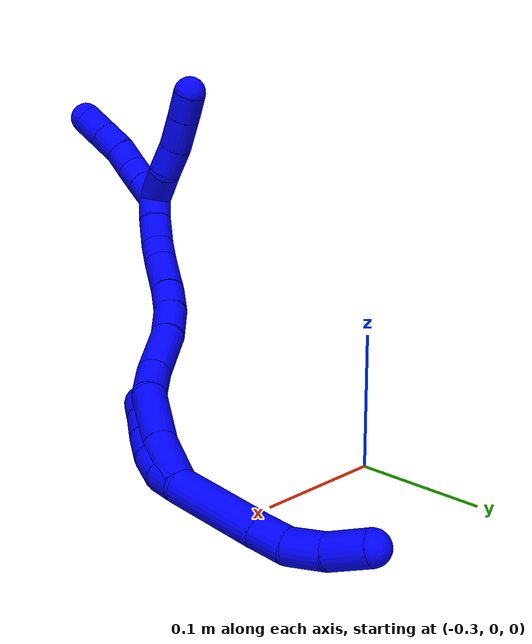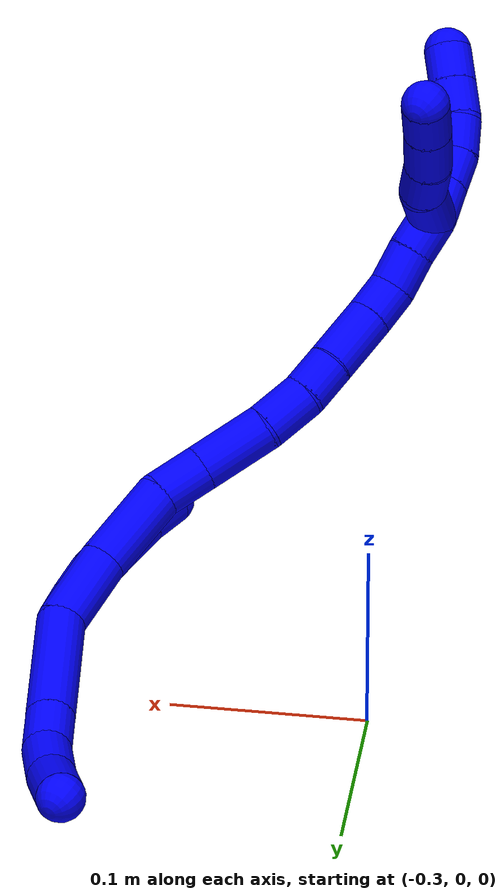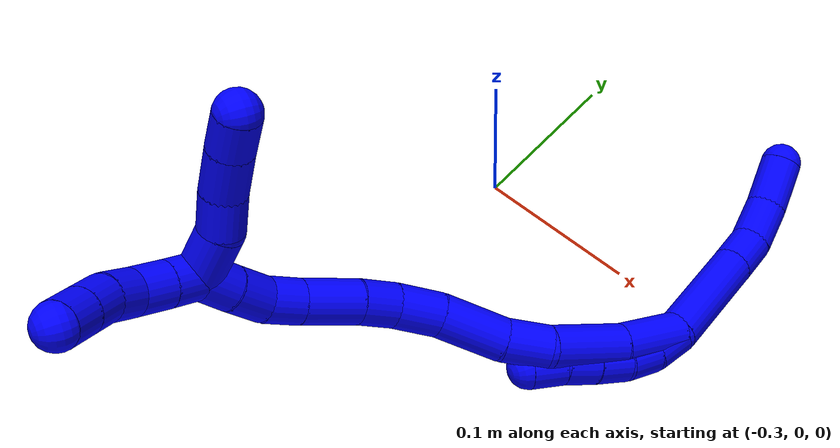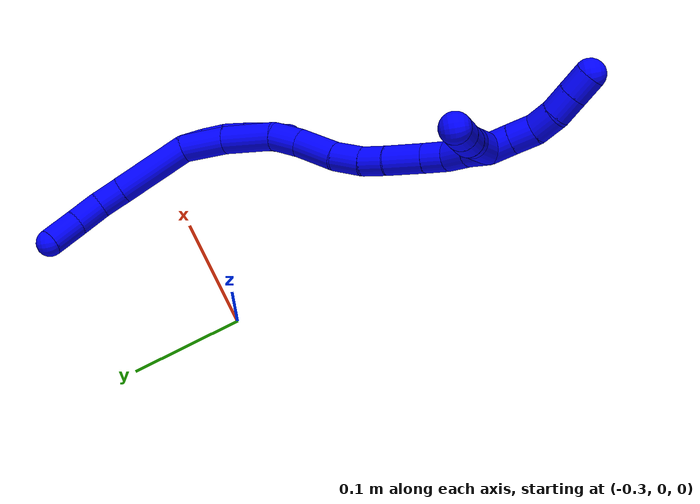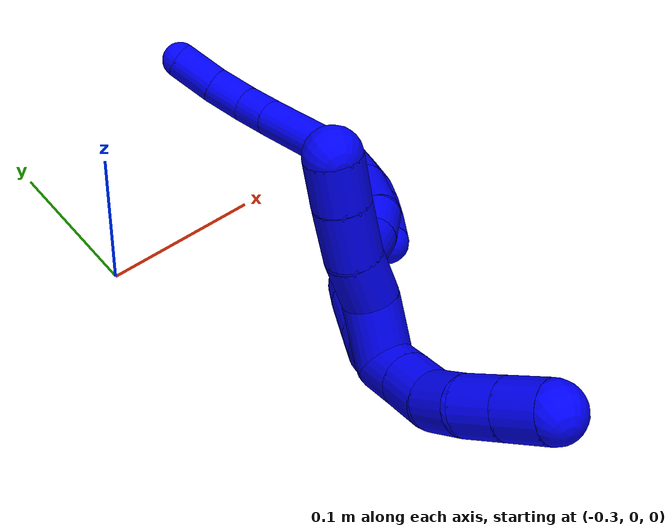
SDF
<sdf version="1.7">
 <world name="default">
  <model name="1">
   <static>0</static>
   <link name="1">
    <collision name="collision-cylinder-e_1_2_8">
     <pose>0.01453 -0.000638 -0.030643 3.12078 0.442671 3.04915</pose>
     <geometry><cylinder><radius>0.0125</radius><length>0.067839</length></cylinder></geometry>
     <surface>
      <friction><ode><mu>1.16</mu><mu2>1.16</mu2><slip1>0</slip1><slip2>0</slip2></ode></friction>
      <contact><ode><kp>1e+06</kp><kd>1</kd><max_vel>0</max_vel><min_depth>0.001</min_depth></ode></contact>
     </surface>
    </collision>
    <visual name="visual-cylinder-e_1_2_8">
     <pose>0.01453 -0.000638 -0.030643 3.12078 0.442671 3.04915</pose>
     <geometry><cylinder><radius>0.0125</radius><length>0.067839</length></cylinder></geometry>
     <material><ambient>0 0 1 1</ambient></material>
    </visual>
    <collision name="collision-cylinder-e_2_8_9">
     <pose>0.034278 -0.001905 -0.072082 3.08335 0.44965 2.8882</pose>
     <geometry><cylinder><radius>0.0125</radius><length>0.024014</length></cylinder></geometry>
     <surface>
      <friction><ode><mu>1.16</mu><mu2>1.16</mu2><slip1>0</slip1><slip2>0</slip2></ode></friction>
      <contact><ode><kp>1e+06</kp><kd>1</kd><max_vel>0</max_vel><min_depth>0.001</min_depth></ode></contact>
     </surface>
    </collision>
    <visual name="visual-cylinder-e_2_8_9">
     <pose>0.034278 -0.001905 -0.072082 3.08335 0.44965 2.8882</pose>
     <geometry><cylinder><radius>0.0125</radius><length>0.024014</length></cylinder></geometry>
     <material><ambient>0 0 1 1</ambient></material>
    </visual>
    <collision name="collision-cylinder-e_3_9_10">
     <pose>0.047265 -0.006548 -0.093408 2.77749 0.603508 2.07339</pose>
     <geometry><cylinder><radius>0.0125</radius><length>0.027376</length></cylinder></geometry>
     <surface>
      <friction><ode><mu>1.16</mu><mu2>1.16</mu2><slip1>0</slip1><slip2>0</slip2></ode></friction>
      <contact><ode><kp>1e+06</kp><kd>1</kd><max_vel>0</max_vel><min_depth>0.001</min_depth></ode></contact>
     </surface>
    </collision>
    <visual name="visual-cylinder-e_3_9_10">
     <pose>0.047265 -0.006548 -0.093408 2.77749 0.603508 2.07339</pose>
     <geometry><cylinder><radius>0.0125</radius><length>0.027376</length></cylinder></geometry>
     <material><ambient>0 0 1 1</ambient></material>
    </visual>
    <collision name="collision-cylinder-e_4_10_6">
     <pose>0.064042 -0.017705 -0.114163 2.53174 0.625537 1.59787</pose>
     <geometry><cylinder><radius>0.0125</radius><length>0.030771</length></cylinder></geometry>
     <surface>
      <friction><ode><mu>1.16</mu><mu2>1.16</mu2><slip1>0</slip1><slip2>0</slip2></ode></friction>
      <contact><ode><kp>1e+06</kp><kd>1</kd><max_vel>0</max_vel><min_depth>0.001</min_depth></ode></contact>
     </surface>
    </collision>
    <visual name="visual-cylinder-e_4_10_6">
     <pose>0.064042 -0.017705 -0.114163 2.53174 0.625537 1.59787</pose>
     <geometry><cylinder><radius>0.0125</radius><length>0.030771</length></cylinder></geometry>
     <material><ambient>0 0 1 1</ambient></material>
    </visual>
    <collision name="collision-cylinder-e_1_2_11">
     <pose>-0.001826 0.001794 0.009667 -0.183493 -0.183659 0.016945</pose>
     <geometry><cylinder><radius>0.0125</radius><length>0.02</length></cylinder></geometry>
     <surface>
      <friction><ode><mu>1.16</mu><mu2>1.16</mu2><slip1>0</slip1><slip2>0</slip2></ode></friction>
      <contact><ode><kp>1e+06</kp><kd>1</kd><max_vel>0</max_vel><min_depth>0.001</min_depth></ode></contact>
     </surface>
    </collision>
    <visual name="visual-cylinder-e_1_2_11">
     <pose>-0.001826 0.001794 0.009667 -0.183493 -0.183659 0.016945</pose>
     <geometry><cylinder><radius>0.0125</radius><length>0.02</length></cylinder></geometry>
     <material><ambient>0 0 1 1</ambient></material>
    </visual>
    <collision name="collision-cylinder-e_2_11_12">
     <pose>-0.003669 0.002736 0.029297 0.085317 -0.001689 -7.2e-05</pose>
     <geometry><cylinder><radius>0.0125</radius><length>0.02</length></cylinder></geometry>
     <surface>
      <friction><ode><mu>1.16</mu><mu2>1.16</mu2><slip1>0</slip1><slip2>0</slip2></ode></friction>
      <contact><ode><kp>1e+06</kp><kd>1</kd><max_vel>0</max_vel><min_depth>0.001</min_depth></ode></contact>
     </surface>
    </collision>
    <visual name="visual-cylinder-e_2_11_12">
     <pose>-0.003669 0.002736 0.029297 0.085317 -0.001689 -7.2e-05</pose>
     <geometry><cylinder><radius>0.0125</radius><length>0.02</length></cylinder></geometry>
     <material><ambient>0 0 1 1</ambient></material>
    </visual>
    <collision name="collision-cylinder-e_3_12_13">
     <pose>-0.001847 0.000377 0.048974 0.153846 0.184991 0.014299</pose>
     <geometry><cylinder><radius>0.0125</radius><length>0.02</length></cylinder></geometry>
     <surface>
      <friction><ode><mu>1.16</mu><mu2>1.16</mu2><slip1>0</slip1><slip2>0</slip2></ode></friction>
      <contact><ode><kp>1e+06</kp><kd>1</kd><max_vel>0</max_vel><min_depth>0.001</min_depth></ode></contact>
     </surface>
    </collision>
    <visual name="visual-cylinder-e_3_12_13">
     <pose>-0.001847 0.000377 0.048974 0.153846 0.184991 0.014299</pose>
     <geometry><cylinder><radius>0.0125</radius><length>0.02</length></cylinder></geometry>
     <material><ambient>0 0 1 1</ambient></material>
    </visual>
    <collision name="collision-cylinder-e_4_13_14">
     <pose>0.002414 -0.002925 0.068222 0.186234 0.244569 0.022953</pose>
     <geometry><cylinder><radius>0.0125</radius><length>0.02</length></cylinder></geometry>
     <surface>
      <friction><ode><mu>1.16</mu><mu2>1.16</mu2><slip1>0</slip1><slip2>0</slip2></ode></friction>
      <contact><ode><kp>1e+06</kp><kd>1</kd><max_vel>0</max_vel><min_depth>0.001</min_depth></ode></contact>
     </surface>
    </collision>
    <visual name="visual-cylinder-e_4_13_14">
     <pose>0.002414 -0.002925 0.068222 0.186234 0.244569 0.022953</pose>
     <geometry><cylinder><radius>0.0125</radius><length>0.02</length></cylinder></geometry>
     <material><ambient>0 0 1 1</ambient></material>
    </visual>
    <collision name="collision-cylinder-e_5_14_5">
     <pose>0.007364 -0.004656 0.087431 -0.006779 0.255676 -0.000871</pose>
     <geometry><cylinder><radius>0.0125</radius><length>0.02</length></cylinder></geometry>
     <surface>
      <friction><ode><mu>1.16</mu><mu2>1.16</mu2><slip1>0</slip1><slip2>0</slip2></ode></friction>
      <contact><ode><kp>1e+06</kp><kd>1</kd><max_vel>0</max_vel><min_depth>0.001</min_depth></ode></contact>
     </surface>
    </collision>
    <visual name="visual-cylinder-e_5_14_5">
     <pose>0.007364 -0.004656 0.087431 -0.006779 0.255676 -0.000871</pose>
     <geometry><cylinder><radius>0.0125</radius><length>0.02</length></cylinder></geometry>
     <material><ambient>0 0 1 1</ambient></material>
    </visual>
    <collision name="collision-cylinder-e_1_2_15">
     <pose>0.000797 -0.003277 0.020419 0.159124 0.038528 0.003072</pose>
     <geometry><cylinder><radius>0.0125</radius><length>0.041391</length></cylinder></geometry>
     <surface>
      <friction><ode><mu>1.16</mu><mu2>1.16</mu2><slip1>0</slip1><slip2>0</slip2></ode></friction>
      <contact><ode><kp>1e+06</kp><kd>1</kd><max_vel>0</max_vel><min_depth>0.001</min_depth></ode></contact>
     </surface>
    </collision>
    <visual name="visual-cylinder-e_1_2_15">
     <pose>0.000797 -0.003277 0.020419 0.159124 0.038528 0.003072</pose>
     <geometry><cylinder><radius>0.0125</radius><length>0.041391</length></cylinder></geometry>
     <material><ambient>0 0 1 1</ambient></material>
    </visual>
    <collision name="collision-cylinder-e_2_15_16">
     <pose>0.005779 -0.011992 0.063606 0.23448 0.176881 0.020887</pose>
     <geometry><cylinder><radius>0.0125</radius><length>0.04756</length></cylinder></geometry>
     <surface>
      <friction><ode><mu>1.16</mu><mu2>1.16</mu2><slip1>0</slip1><slip2>0</slip2></ode></friction>
      <contact><ode><kp>1e+06</kp><kd>1</kd><max_vel>0</max_vel><min_depth>0.001</min_depth></ode></contact>
     </surface>
    </collision>
    <visual name="visual-cylinder-e_2_15_16">
     <pose>0.005779 -0.011992 0.063606 0.23448 0.176881 0.020887</pose>
     <geometry><cylinder><radius>0.0125</radius><length>0.04756</length></cylinder></geometry>
     <material><ambient>0 0 1 1</ambient></material>
    </visual>
    <collision name="collision-cylinder-e_3_16_17">
     <pose>0.016089 -0.019441 0.09815 0.169007 0.47382 0.040897</pose>
     <geometry><cylinder><radius>0.0125</radius><length>0.02685</length></cylinder></geometry>
     <surface>
      <friction><ode><mu>1.16</mu><mu2>1.16</mu2><slip1>0</slip1><slip2>0</slip2></ode></friction>
      <contact><ode><kp>1e+06</kp><kd>1</kd><max_vel>0</max_vel><min_depth>0.001</min_depth></ode></contact>
     </surface>
    </collision>
    <visual name="visual-cylinder-e_3_16_17">
     <pose>0.016089 -0.019441 0.09815 0.169007 0.47382 0.040897</pose>
     <geometry><cylinder><radius>0.0125</radius><length>0.02685</length></cylinder></geometry>
     <material><ambient>0 0 1 1</ambient></material>
    </visual>
    <collision name="collision-cylinder-e_4_17_18">
     <pose>0.032946 -0.027366 0.125147 0.37069 0.5814 0.112071</pose>
     <geometry><cylinder><radius>0.0125</radius><length>0.039082</length></cylinder></geometry>
     <surface>
      <friction><ode><mu>1.16</mu><mu2>1.16</mu2><slip1>0</slip1><slip2>0</slip2></ode></friction>
      <contact><ode><kp>1e+06</kp><kd>1</kd><max_vel>0</max_vel><min_depth>0.001</min_depth></ode></contact>
     </surface>
    </collision>
    <visual name="visual-cylinder-e_4_17_18">
     <pose>0.032946 -0.027366 0.125147 0.37069 0.5814 0.112071</pose>
     <geometry><cylinder><radius>0.0125</radius><length>0.039082</length></cylinder></geometry>
     <material><ambient>0 0 1 1</ambient></material>
    </visual>
    <collision name="collision-cylinder-e_5_18_19">
     <pose>0.049066 -0.036817 0.152057 0.293737 0.415493 0.062345</pose>
     <geometry><cylinder><radius>0.0125</radius><length>0.026696</length></cylinder></geometry>
     <surface>
      <friction><ode><mu>1.16</mu><mu2>1.16</mu2><slip1>0</slip1><slip2>0</slip2></ode></friction>
      <contact><ode><kp>1e+06</kp><kd>1</kd><max_vel>0</max_vel><min_depth>0.001</min_depth></ode></contact>
     </surface>
    </collision>
    <visual name="visual-cylinder-e_5_18_19">
     <pose>0.049066 -0.036817 0.152057 0.293737 0.415493 0.062345</pose>
     <geometry><cylinder><radius>0.0125</radius><length>0.026696</length></cylinder></geometry>
     <material><ambient>0 0 1 1</ambient></material>
    </visual>
    <collision name="collision-cylinder-e_6_19_20">
     <pose>0.056954 -0.043775 0.173785 0.328516 0.231592 0.038554</pose>
     <geometry><cylinder><radius>0.0125</radius><length>0.021793</length></cylinder></geometry>
     <surface>
      <friction><ode><mu>1.16</mu><mu2>1.16</mu2><slip1>0</slip1><slip2>0</slip2></ode></friction>
      <contact><ode><kp>1e+06</kp><kd>1</kd><max_vel>0</max_vel><min_depth>0.001</min_depth></ode></contact>
     </surface>
    </collision>
    <visual name="visual-cylinder-e_6_19_20">
     <pose>0.056954 -0.043775 0.173785 0.328516 0.231592 0.038554</pose>
     <geometry><cylinder><radius>0.0125</radius><length>0.021793</length></cylinder></geometry>
     <material><ambient>0 0 1 1</ambient></material>
    </visual>
    <collision name="collision-cylinder-e_7_20_21">
     <pose>0.062503 -0.051219 0.199838 0.246059 0.182511 0.02263</pose>
     <geometry><cylinder><radius>0.0125</radius><length>0.033582</length></cylinder></geometry>
     <surface>
      <friction><ode><mu>1.16</mu><mu2>1.16</mu2><slip1>0</slip1><slip2>0</slip2></ode></friction>
      <contact><ode><kp>1e+06</kp><kd>1</kd><max_vel>0</max_vel><min_depth>0.001</min_depth></ode></contact>
     </surface>
    </collision>
    <visual name="visual-cylinder-e_7_20_21">
     <pose>0.062503 -0.051219 0.199838 0.246059 0.182511 0.02263</pose>
     <geometry><cylinder><radius>0.0125</radius><length>0.033582</length></cylinder></geometry>
     <material><ambient>0 0 1 1</ambient></material>
    </visual>
    <collision name="collision-cylinder-e_8_21_22">
     <pose>0.067465 -0.058487 0.225447 0.326293 0.186794 0.030835</pose>
     <geometry><cylinder><radius>0.0125</radius><length>0.020615</length></cylinder></geometry>
     <surface>
      <friction><ode><mu>1.16</mu><mu2>1.16</mu2><slip1>0</slip1><slip2>0</slip2></ode></friction>
      <contact><ode><kp>1e+06</kp><kd>1</kd><max_vel>0</max_vel><min_depth>0.001</min_depth></ode></contact>
     </surface>
    </collision>
    <visual name="visual-cylinder-e_8_21_22">
     <pose>0.067465 -0.058487 0.225447 0.326293 0.186794 0.030835</pose>
     <geometry><cylinder><radius>0.0125</radius><length>0.020615</length></cylinder></geometry>
     <material><ambient>0 0 1 1</ambient></material>
    </visual>
    <collision name="collision-cylinder-e_9_22_23">
     <pose>0.070984 -0.068434 0.243724 0.657174 0.145272 0.049607</pose>
     <geometry><cylinder><radius>0.0125</radius><length>0.02217</length></cylinder></geometry>
     <surface>
      <friction><ode><mu>1.16</mu><mu2>1.16</mu2><slip1>0</slip1><slip2>0</slip2></ode></friction>
      <contact><ode><kp>1e+06</kp><kd>1</kd><max_vel>0</max_vel><min_depth>0.001</min_depth></ode></contact>
     </surface>
    </collision>
    <visual name="visual-cylinder-e_9_22_23">
     <pose>0.070984 -0.068434 0.243724 0.657174 0.145272 0.049607</pose>
     <geometry><cylinder><radius>0.0125</radius><length>0.02217</length></cylinder></geometry>
     <material><ambient>0 0 1 1</ambient></material>
    </visual>
    <collision name="collision-cylinder-e_10_23_1">
     <pose>0.074889 -0.081071 0.260288 0.645632 0.229075 0.076928</pose>
     <geometry><cylinder><radius>0.0125</radius><length>0.020261</length></cylinder></geometry>
     <surface>
      <friction><ode><mu>1.16</mu><mu2>1.16</mu2><slip1>0</slip1><slip2>0</slip2></ode></friction>
      <contact><ode><kp>1e+06</kp><kd>1</kd><max_vel>0</max_vel><min_depth>0.001</min_depth></ode></contact>
     </surface>
    </collision>
    <visual name="visual-cylinder-e_10_23_1">
     <pose>0.074889 -0.081071 0.260288 0.645632 0.229075 0.076928</pose>
     <geometry><cylinder><radius>0.0125</radius><length>0.020261</length></cylinder></geometry>
     <material><ambient>0 0 1 1</ambient></material>
    </visual>
    <collision name="collision-cylinder-e_1_1_24">
     <pose>0.077631 -0.100973 0.262518 1.95525 0.029293 0.043448</pose>
     <geometry><cylinder><radius>0.0125</radius><length>0.030143</length></cylinder></geometry>
     <surface>
      <friction><ode><mu>1.16</mu><mu2>1.16</mu2><slip1>0</slip1><slip2>0</slip2></ode></friction>
      <contact><ode><kp>1e+06</kp><kd>1</kd><max_vel>0</max_vel><min_depth>0.001</min_depth></ode></contact>
     </surface>
    </collision>
    <visual name="visual-cylinder-e_1_1_24">
     <pose>0.077631 -0.100973 0.262518 1.95525 0.029293 0.043448</pose>
     <geometry><cylinder><radius>0.0125</radius><length>0.030143</length></cylinder></geometry>
     <material><ambient>0 0 1 1</ambient></material>
    </visual>
    <collision name="collision-cylinder-e_2_24_25">
     <pose>0.080686 -0.125766 0.255517 1.6949 0.235135 0.265943</pose>
     <geometry><cylinder><radius>0.0125</radius><length>0.022441</length></cylinder></geometry>
     <surface>
      <friction><ode><mu>1.16</mu><mu2>1.16</mu2><slip1>0</slip1><slip2>0</slip2></ode></friction>
      <contact><ode><kp>1e+06</kp><kd>1</kd><max_vel>0</max_vel><min_depth>0.001</min_depth></ode></contact>
     </surface>
    </collision>
    <visual name="visual-cylinder-e_2_24_25">
     <pose>0.080686 -0.125766 0.255517 1.6949 0.235135 0.265943</pose>
     <geometry><cylinder><radius>0.0125</radius><length>0.022441</length></cylinder></geometry>
     <material><ambient>0 0 1 1</ambient></material>
    </visual>
    <collision name="collision-cylinder-e_3_25_26">
     <pose>0.084461 -0.149363 0.252408 1.70768 0.089838 0.103038</pose>
     <geometry><cylinder><radius>0.0125</radius><length>0.025882</length></cylinder></geometry>
     <surface>
      <friction><ode><mu>1.16</mu><mu2>1.16</mu2><slip1>0</slip1><slip2>0</slip2></ode></friction>
      <contact><ode><kp>1e+06</kp><kd>1</kd><max_vel>0</max_vel><min_depth>0.001</min_depth></ode></contact>
     </surface>
    </collision>
    <visual name="visual-cylinder-e_3_25_26">
     <pose>0.084461 -0.149363 0.252408 1.70768 0.089838 0.103038</pose>
     <geometry><cylinder><radius>0.0125</radius><length>0.025882</length></cylinder></geometry>
     <material><ambient>0 0 1 1</ambient></material>
    </visual>
    <collision name="collision-cylinder-e_4_26_4">
     <pose>0.086181 -0.172755 0.248998 1.72494 0.051936 0.060624</pose>
     <geometry><cylinder><radius>0.0125</radius><length>0.021533</length></cylinder></geometry>
     <surface>
      <friction><ode><mu>1.16</mu><mu2>1.16</mu2><slip1>0</slip1><slip2>0</slip2></ode></friction>
      <contact><ode><kp>1e+06</kp><kd>1</kd><max_vel>0</max_vel><min_depth>0.001</min_depth></ode></contact>
     </surface>
    </collision>
    <visual name="visual-cylinder-e_4_26_4">
     <pose>0.086181 -0.172755 0.248998 1.72494 0.051936 0.060624</pose>
     <geometry><cylinder><radius>0.0125</radius><length>0.021533</length></cylinder></geometry>
     <material><ambient>0 0 1 1</ambient></material>
    </visual>
    <collision name="collision-cylinder-e_1_1_27">
     <pose>0.075581 -0.089696 0.277665 0.275966 -0.161512 -0.022476</pose>
     <geometry><cylinder><radius>0.0125</radius><length>0.02</length></cylinder></geometry>
     <surface>
      <friction><ode><mu>1.16</mu><mu2>1.16</mu2><slip1>0</slip1><slip2>0</slip2></ode></friction>
      <contact><ode><kp>1e+06</kp><kd>1</kd><max_vel>0</max_vel><min_depth>0.001</min_depth></ode></contact>
     </surface>
    </collision>
    <visual name="visual-cylinder-e_1_1_27">
     <pose>0.075581 -0.089696 0.277665 0.275966 -0.161512 -0.022476</pose>
     <geometry><cylinder><radius>0.0125</radius><length>0.02</length></cylinder></geometry>
     <material><ambient>0 0 1 1</ambient></material>
    </visual>
    <collision name="collision-cylinder-e_2_27_28">
     <pose>0.07255 -0.095137 0.29667 0.281624 -0.142793 -0.020275</pose>
     <geometry><cylinder><radius>0.0125</radius><length>0.02</length></cylinder></geometry>
     <surface>
      <friction><ode><mu>1.16</mu><mu2>1.16</mu2><slip1>0</slip1><slip2>0</slip2></ode></friction>
      <contact><ode><kp>1e+06</kp><kd>1</kd><max_vel>0</max_vel><min_depth>0.001</min_depth></ode></contact>
     </surface>
    </collision>
    <visual name="visual-cylinder-e_2_27_28">
     <pose>0.07255 -0.095137 0.29667 0.281624 -0.142793 -0.020275</pose>
     <geometry><cylinder><radius>0.0125</radius><length>0.02</length></cylinder></geometry>
     <material><ambient>0 0 1 1</ambient></material>
    </visual>
    <collision name="collision-cylinder-e_3_28_29">
     <pose>0.06805 -0.102927 0.314249 0.55815 -0.312776 -0.090303</pose>
     <geometry><cylinder><radius>0.0125</radius><length>0.02</length></cylinder></geometry>
     <surface>
      <friction><ode><mu>1.16</mu><mu2>1.16</mu2><slip1>0</slip1><slip2>0</slip2></ode></friction>
      <contact><ode><kp>1e+06</kp><kd>1</kd><max_vel>0</max_vel><min_depth>0.001</min_depth></ode></contact>
     </surface>
    </collision>
    <visual name="visual-cylinder-e_3_28_29">
     <pose>0.06805 -0.102927 0.314249 0.55815 -0.312776 -0.090303</pose>
     <geometry><cylinder><radius>0.0125</radius><length>0.02</length></cylinder></geometry>
     <material><ambient>0 0 1 1</ambient></material>
    </visual>
    <collision name="collision-cylinder-e_4_29_30">
     <pose>0.059854 -0.112272 0.329754 0.524976 -0.537319 -0.147679</pose>
     <geometry><cylinder><radius>0.0125</radius><length>0.02</length></cylinder></geometry>
     <surface>
      <friction><ode><mu>1.16</mu><mu2>1.16</mu2><slip1>0</slip1><slip2>0</slip2></ode></friction>
      <contact><ode><kp>1e+06</kp><kd>1</kd><max_vel>0</max_vel><min_depth>0.001</min_depth></ode></contact>
     </surface>
    </collision>
    <visual name="visual-cylinder-e_4_29_30">
     <pose>0.059854 -0.112272 0.329754 0.524976 -0.537319 -0.147679</pose>
     <geometry><cylinder><radius>0.0125</radius><length>0.02</length></cylinder></geometry>
     <material><ambient>0 0 1 1</ambient></material>
    </visual>
    <collision name="collision-cylinder-e_5_30_3">
     <pose>0.0496 -0.120868 0.344618 0.523619 -0.539331 -0.147857</pose>
     <geometry><cylinder><radius>0.0125</radius><length>0.02</length></cylinder></geometry>
     <surface>
      <friction><ode><mu>1.16</mu><mu2>1.16</mu2><slip1>0</slip1><slip2>0</slip2></ode></friction>
      <contact><ode><kp>1e+06</kp><kd>1</kd><max_vel>0</max_vel><min_depth>0.001</min_depth></ode></contact>
     </surface>
    </collision>
    <visual name="visual-cylinder-e_5_30_3">
     <pose>0.0496 -0.120868 0.344618 0.523619 -0.539331 -0.147857</pose>
     <geometry><cylinder><radius>0.0125</radius><length>0.02</length></cylinder></geometry>
     <material><ambient>0 0 1 1</ambient></material>
    </visual>
    <collision name="collision-sphere-3">
     <pose>0.044465 -0.125158 0.352049 0 -0 0</pose>
     <geometry><sphere><radius>0.0125</radius></sphere></geometry>
     <surface>
      <friction><ode><mu>1.16</mu><mu2>1.16</mu2><slip1>0</slip1><slip2>0</slip2></ode></friction>
      <contact><ode><kp>1e+06</kp><kd>1</kd><max_vel>0</max_vel><min_depth>0.001</min_depth></ode></contact>
     </surface>
    </collision>
    <visual name="visual-sphere-3">
     <pose>0.044465 -0.125158 0.352049 0 -0 0</pose>
     <geometry><sphere><radius>0.0125</radius></sphere></geometry>
     <material><ambient>0 0 1 1</ambient></material>
    </visual>
    <collision name="collision-sphere-30">
     <pose>0.054736 -0.116577 0.337187 0 -0 0</pose>
     <geometry><sphere><radius>0.0125</radius></sphere></geometry>
     <surface>
      <friction><ode><mu>1.16</mu><mu2>1.16</mu2><slip1>0</slip1><slip2>0</slip2></ode></friction>
      <contact><ode><kp>1e+06</kp><kd>1</kd><max_vel>0</max_vel><min_depth>0.001</min_depth></ode></contact>
     </surface>
    </collision>
    <visual name="visual-sphere-30">
     <pose>0.054736 -0.116577 0.337187 0 -0 0</pose>
     <geometry><sphere><radius>0.0125</radius></sphere></geometry>
     <material><ambient>0 0 1 1</ambient></material>
    </visual>
    <collision name="collision-sphere-29">
     <pose>0.064973 -0.107966 0.32232 0 -0 0</pose>
     <geometry><sphere><radius>0.0125</radius></sphere></geometry>
     <surface>
      <friction><ode><mu>1.16</mu><mu2>1.16</mu2><slip1>0</slip1><slip2>0</slip2></ode></friction>
      <contact><ode><kp>1e+06</kp><kd>1</kd><max_vel>0</max_vel><min_depth>0.001</min_depth></ode></contact>
     </surface>
    </collision>
    <visual name="visual-sphere-29">
     <pose>0.064973 -0.107966 0.32232 0 -0 0</pose>
     <geometry><sphere><radius>0.0125</radius></sphere></geometry>
     <material><ambient>0 0 1 1</ambient></material>
    </visual>
    <collision name="collision-sphere-28">
     <pose>0.071127 -0.097888 0.306178 0 -0 0</pose>
     <geometry><sphere><radius>0.0125</radius></sphere></geometry>
     <surface>
      <friction><ode><mu>1.16</mu><mu2>1.16</mu2><slip1>0</slip1><slip2>0</slip2></ode></friction>
      <contact><ode><kp>1e+06</kp><kd>1</kd><max_vel>0</max_vel><min_depth>0.001</min_depth></ode></contact>
     </surface>
    </collision>
    <visual name="visual-sphere-28">
     <pose>0.071127 -0.097888 0.306178 0 -0 0</pose>
     <geometry><sphere><radius>0.0125</radius></sphere></geometry>
     <material><ambient>0 0 1 1</ambient></material>
    </visual>
    <collision name="collision-sphere-27">
     <pose>0.073973 -0.092386 0.287161 0 -0 0</pose>
     <geometry><sphere><radius>0.0125</radius></sphere></geometry>
     <surface>
      <friction><ode><mu>1.16</mu><mu2>1.16</mu2><slip1>0</slip1><slip2>0</slip2></ode></friction>
      <contact><ode><kp>1e+06</kp><kd>1</kd><max_vel>0</max_vel><min_depth>0.001</min_depth></ode></contact>
     </surface>
    </collision>
    <visual name="visual-sphere-27">
     <pose>0.073973 -0.092386 0.287161 0 -0 0</pose>
     <geometry><sphere><radius>0.0125</radius></sphere></geometry>
     <material><ambient>0 0 1 1</ambient></material>
    </visual>
    <collision name="collision-sphere-4">
     <pose>0.08674 -0.18338 0.247347 0 -0 0</pose>
     <geometry><sphere><radius>0.0125</radius></sphere></geometry>
     <surface>
      <friction><ode><mu>1.16</mu><mu2>1.16</mu2><slip1>0</slip1><slip2>0</slip2></ode></friction>
      <contact><ode><kp>1e+06</kp><kd>1</kd><max_vel>0</max_vel><min_depth>0.001</min_depth></ode></contact>
     </surface>
    </collision>
    <visual name="visual-sphere-4">
     <pose>0.08674 -0.18338 0.247347 0 -0 0</pose>
     <geometry><sphere><radius>0.0125</radius></sphere></geometry>
     <material><ambient>0 0 1 1</ambient></material>
    </visual>
    <collision name="collision-sphere-26">
     <pose>0.085622 -0.162131 0.250649 0 -0 0</pose>
     <geometry><sphere><radius>0.0125</radius></sphere></geometry>
     <surface>
      <friction><ode><mu>1.16</mu><mu2>1.16</mu2><slip1>0</slip1><slip2>0</slip2></ode></friction>
      <contact><ode><kp>1e+06</kp><kd>1</kd><max_vel>0</max_vel><min_depth>0.001</min_depth></ode></contact>
     </surface>
    </collision>
    <visual name="visual-sphere-26">
     <pose>0.085622 -0.162131 0.250649 0 -0 0</pose>
     <geometry><sphere><radius>0.0125</radius></sphere></geometry>
     <material><ambient>0 0 1 1</ambient></material>
    </visual>
    <collision name="collision-sphere-25">
     <pose>0.0833 -0.136594 0.254166 0 -0 0</pose>
     <geometry><sphere><radius>0.0125</radius></sphere></geometry>
     <surface>
      <friction><ode><mu>1.16</mu><mu2>1.16</mu2><slip1>0</slip1><slip2>0</slip2></ode></friction>
      <contact><ode><kp>1e+06</kp><kd>1</kd><max_vel>0</max_vel><min_depth>0.001</min_depth></ode></contact>
     </surface>
    </collision>
    <visual name="visual-sphere-25">
     <pose>0.0833 -0.136594 0.254166 0 -0 0</pose>
     <geometry><sphere><radius>0.0125</radius></sphere></geometry>
     <material><ambient>0 0 1 1</ambient></material>
    </visual>
    <collision name="collision-sphere-24">
     <pose>0.078072 -0.114938 0.256868 0 -0 0</pose>
     <geometry><sphere><radius>0.0125</radius></sphere></geometry>
     <surface>
      <friction><ode><mu>1.16</mu><mu2>1.16</mu2><slip1>0</slip1><slip2>0</slip2></ode></friction>
      <contact><ode><kp>1e+06</kp><kd>1</kd><max_vel>0</max_vel><min_depth>0.001</min_depth></ode></contact>
     </surface>
    </collision>
    <visual name="visual-sphere-24">
     <pose>0.078072 -0.114938 0.256868 0 -0 0</pose>
     <geometry><sphere><radius>0.0125</radius></sphere></geometry>
     <material><ambient>0 0 1 1</ambient></material>
    </visual>
    <collision name="collision-sphere-1">
     <pose>0.077189 -0.087007 0.268169 0 -0 0</pose>
     <geometry><sphere><radius>0.0125</radius></sphere></geometry>
     <surface>
      <friction><ode><mu>1.16</mu><mu2>1.16</mu2><slip1>0</slip1><slip2>0</slip2></ode></friction>
      <contact><ode><kp>1e+06</kp><kd>1</kd><max_vel>0</max_vel><min_depth>0.001</min_depth></ode></contact>
     </surface>
    </collision>
    <visual name="visual-sphere-1">
     <pose>0.077189 -0.087007 0.268169 0 -0 0</pose>
     <geometry><sphere><radius>0.0125</radius></sphere></geometry>
     <material><ambient>0 0 1 1</ambient></material>
    </visual>
    <collision name="collision-sphere-23">
     <pose>0.072588 -0.075135 0.252408 0 -0 0</pose>
     <geometry><sphere><radius>0.0125</radius></sphere></geometry>
     <surface>
      <friction><ode><mu>1.16</mu><mu2>1.16</mu2><slip1>0</slip1><slip2>0</slip2></ode></friction>
      <contact><ode><kp>1e+06</kp><kd>1</kd><max_vel>0</max_vel><min_depth>0.001</min_depth></ode></contact>
     </surface>
    </collision>
    <visual name="visual-sphere-23">
     <pose>0.072588 -0.075135 0.252408 0 -0 0</pose>
     <geometry><sphere><radius>0.0125</radius></sphere></geometry>
     <material><ambient>0 0 1 1</ambient></material>
    </visual>
    <collision name="collision-sphere-22">
     <pose>0.069379 -0.061734 0.235041 0 -0 0</pose>
     <geometry><sphere><radius>0.0125</radius></sphere></geometry>
     <surface>
      <friction><ode><mu>1.16</mu><mu2>1.16</mu2><slip1>0</slip1><slip2>0</slip2></ode></friction>
      <contact><ode><kp>1e+06</kp><kd>1</kd><max_vel>0</max_vel><min_depth>0.001</min_depth></ode></contact>
     </surface>
    </collision>
    <visual name="visual-sphere-22">
     <pose>0.069379 -0.061734 0.235041 0 -0 0</pose>
     <geometry><sphere><radius>0.0125</radius></sphere></geometry>
     <material><ambient>0 0 1 1</ambient></material>
    </visual>
    <collision name="collision-sphere-21">
     <pose>0.065551 -0.055241 0.215853 0 -0 0</pose>
     <geometry><sphere><radius>0.0125</radius></sphere></geometry>
     <surface>
      <friction><ode><mu>1.16</mu><mu2>1.16</mu2><slip1>0</slip1><slip2>0</slip2></ode></friction>
      <contact><ode><kp>1e+06</kp><kd>1</kd><max_vel>0</max_vel><min_depth>0.001</min_depth></ode></contact>
     </surface>
    </collision>
    <visual name="visual-sphere-21">
     <pose>0.065551 -0.055241 0.215853 0 -0 0</pose>
     <geometry><sphere><radius>0.0125</radius></sphere></geometry>
     <material><ambient>0 0 1 1</ambient></material>
    </visual>
    <collision name="collision-sphere-11">
     <pose>-0.003653 0.003588 0.019334 0 -0 0</pose>
     <geometry><sphere><radius>0.0125</radius></sphere></geometry>
     <surface>
      <friction><ode><mu>1.16</mu><mu2>1.16</mu2><slip1>0</slip1><slip2>0</slip2></ode></friction>
      <contact><ode><kp>1e+06</kp><kd>1</kd><max_vel>0</max_vel><min_depth>0.001</min_depth></ode></contact>
     </surface>
    </collision>
    <visual name="visual-sphere-11">
     <pose>-0.003653 0.003588 0.019334 0 -0 0</pose>
     <geometry><sphere><radius>0.0125</radius></sphere></geometry>
     <material><ambient>0 0 1 1</ambient></material>
    </visual>
    <collision name="collision-sphere-6">
     <pose>0.073051 -0.024849 -0.124387 0 -0 0</pose>
     <geometry><sphere><radius>0.0125</radius></sphere></geometry>
     <surface>
      <friction><ode><mu>1.16</mu><mu2>1.16</mu2><slip1>0</slip1><slip2>0</slip2></ode></friction>
      <contact><ode><kp>1e+06</kp><kd>1</kd><max_vel>0</max_vel><min_depth>0.001</min_depth></ode></contact>
     </surface>
    </collision>
    <visual name="visual-sphere-6">
     <pose>0.073051 -0.024849 -0.124387 0 -0 0</pose>
     <geometry><sphere><radius>0.0125</radius></sphere></geometry>
     <material><ambient>0 0 1 1</ambient></material>
    </visual>
    <collision name="collision-sphere-10">
     <pose>0.055033 -0.010562 -0.103939 0 -0 0</pose>
     <geometry><sphere><radius>0.0125</radius></sphere></geometry>
     <surface>
      <friction><ode><mu>1.16</mu><mu2>1.16</mu2><slip1>0</slip1><slip2>0</slip2></ode></friction>
      <contact><ode><kp>1e+06</kp><kd>1</kd><max_vel>0</max_vel><min_depth>0.001</min_depth></ode></contact>
     </surface>
    </collision>
    <visual name="visual-sphere-10">
     <pose>0.055033 -0.010562 -0.103939 0 -0 0</pose>
     <geometry><sphere><radius>0.0125</radius></sphere></geometry>
     <material><ambient>0 0 1 1</ambient></material>
    </visual>
    <collision name="collision-sphere-9">
     <pose>0.039497 -0.002535 -0.082877 0 -0 0</pose>
     <geometry><sphere><radius>0.0125</radius></sphere></geometry>
     <surface>
      <friction><ode><mu>1.16</mu><mu2>1.16</mu2><slip1>0</slip1><slip2>0</slip2></ode></friction>
      <contact><ode><kp>1e+06</kp><kd>1</kd><max_vel>0</max_vel><min_depth>0.001</min_depth></ode></contact>
     </surface>
    </collision>
    <visual name="visual-sphere-9">
     <pose>0.039497 -0.002535 -0.082877 0 -0 0</pose>
     <geometry><sphere><radius>0.0125</radius></sphere></geometry>
     <material><ambient>0 0 1 1</ambient></material>
    </visual>
    <collision name="collision-sphere-2">
     <geometry><sphere><radius>0.0125</radius></sphere></geometry>
     <surface>
      <friction><ode><mu>1.16</mu><mu2>1.16</mu2><slip1>0</slip1><slip2>0</slip2></ode></friction>
      <contact><ode><kp>1e+06</kp><kd>1</kd><max_vel>0</max_vel><min_depth>0.001</min_depth></ode></contact>
     </surface>
    </collision>
    <visual name="visual-sphere-2">
     <geometry><sphere><radius>0.0125</radius></sphere></geometry>
     <material><ambient>0 0 1 1</ambient></material>
    </visual>
    <collision name="collision-sphere-19">
     <pose>0.054453 -0.040353 0.163747 0 -0 0</pose>
     <geometry><sphere><radius>0.0125</radius></sphere></geometry>
     <surface>
      <friction><ode><mu>1.16</mu><mu2>1.16</mu2><slip1>0</slip1><slip2>0</slip2></ode></friction>
      <contact><ode><kp>1e+06</kp><kd>1</kd><max_vel>0</max_vel><min_depth>0.001</min_depth></ode></contact>
     </surface>
    </collision>
    <visual name="visual-sphere-19">
     <pose>0.054453 -0.040353 0.163747 0 -0 0</pose>
     <geometry><sphere><radius>0.0125</radius></sphere></geometry>
     <material><ambient>0 0 1 1</ambient></material>
    </visual>
    <collision name="collision-sphere-8">
     <pose>0.029059 -0.001276 -0.061287 0 -0 0</pose>
     <geometry><sphere><radius>0.0125</radius></sphere></geometry>
     <surface>
      <friction><ode><mu>1.16</mu><mu2>1.16</mu2><slip1>0</slip1><slip2>0</slip2></ode></friction>
      <contact><ode><kp>1e+06</kp><kd>1</kd><max_vel>0</max_vel><min_depth>0.001</min_depth></ode></contact>
     </surface>
    </collision>
    <visual name="visual-sphere-8">
     <pose>0.029059 -0.001276 -0.061287 0 -0 0</pose>
     <geometry><sphere><radius>0.0125</radius></sphere></geometry>
     <material><ambient>0 0 1 1</ambient></material>
    </visual>
    <collision name="collision-sphere-12">
     <pose>-0.003686 0.001884 0.039261 0 -0 0</pose>
     <geometry><sphere><radius>0.0125</radius></sphere></geometry>
     <surface>
      <friction><ode><mu>1.16</mu><mu2>1.16</mu2><slip1>0</slip1><slip2>0</slip2></ode></friction>
      <contact><ode><kp>1e+06</kp><kd>1</kd><max_vel>0</max_vel><min_depth>0.001</min_depth></ode></contact>
     </surface>
    </collision>
    <visual name="visual-sphere-12">
     <pose>-0.003686 0.001884 0.039261 0 -0 0</pose>
     <geometry><sphere><radius>0.0125</radius></sphere></geometry>
     <material><ambient>0 0 1 1</ambient></material>
    </visual>
    <collision name="collision-sphere-13">
     <pose>-8e-06 -0.001129 0.058687 0 -0 0</pose>
     <geometry><sphere><radius>0.0125</radius></sphere></geometry>
     <surface>
      <friction><ode><mu>1.16</mu><mu2>1.16</mu2><slip1>0</slip1><slip2>0</slip2></ode></friction>
      <contact><ode><kp>1e+06</kp><kd>1</kd><max_vel>0</max_vel><min_depth>0.001</min_depth></ode></contact>
     </surface>
    </collision>
    <visual name="visual-sphere-13">
     <pose>-8e-06 -0.001129 0.058687 0 -0 0</pose>
     <geometry><sphere><radius>0.0125</radius></sphere></geometry>
     <material><ambient>0 0 1 1</ambient></material>
    </visual>
    <collision name="collision-sphere-14">
     <pose>0.004835 -0.004722 0.077757 0 -0 0</pose>
     <geometry><sphere><radius>0.0125</radius></sphere></geometry>
     <surface>
      <friction><ode><mu>1.16</mu><mu2>1.16</mu2><slip1>0</slip1><slip2>0</slip2></ode></friction>
      <contact><ode><kp>1e+06</kp><kd>1</kd><max_vel>0</max_vel><min_depth>0.001</min_depth></ode></contact>
     </surface>
    </collision>
    <visual name="visual-sphere-14">
     <pose>0.004835 -0.004722 0.077757 0 -0 0</pose>
     <geometry><sphere><radius>0.0125</radius></sphere></geometry>
     <material><ambient>0 0 1 1</ambient></material>
    </visual>
    <collision name="collision-sphere-5">
     <pose>0.009893 -0.004591 0.097106 0 -0 0</pose>
     <geometry><sphere><radius>0.0125</radius></sphere></geometry>
     <surface>
      <friction><ode><mu>1.16</mu><mu2>1.16</mu2><slip1>0</slip1><slip2>0</slip2></ode></friction>
      <contact><ode><kp>1e+06</kp><kd>1</kd><max_vel>0</max_vel><min_depth>0.001</min_depth></ode></contact>
     </surface>
    </collision>
    <visual name="visual-sphere-5">
     <pose>0.009893 -0.004591 0.097106 0 -0 0</pose>
     <geometry><sphere><radius>0.0125</radius></sphere></geometry>
     <material><ambient>0 0 1 1</ambient></material>
    </visual>
    <collision name="collision-sphere-15">
     <pose>0.001594 -0.006554 0.040838 0 -0 0</pose>
     <geometry><sphere><radius>0.0125</radius></sphere></geometry>
     <surface>
      <friction><ode><mu>1.16</mu><mu2>1.16</mu2><slip1>0</slip1><slip2>0</slip2></ode></friction>
      <contact><ode><kp>1e+06</kp><kd>1</kd><max_vel>0</max_vel><min_depth>0.001</min_depth></ode></contact>
     </surface>
    </collision>
    <visual name="visual-sphere-15">
     <pose>0.001594 -0.006554 0.040838 0 -0 0</pose>
     <geometry><sphere><radius>0.0125</radius></sphere></geometry>
     <material><ambient>0 0 1 1</ambient></material>
    </visual>
    <collision name="collision-sphere-16">
     <pose>0.009963 -0.017431 0.086375 0 -0 0</pose>
     <geometry><sphere><radius>0.0125</radius></sphere></geometry>
     <surface>
      <friction><ode><mu>1.16</mu><mu2>1.16</mu2><slip1>0</slip1><slip2>0</slip2></ode></friction>
      <contact><ode><kp>1e+06</kp><kd>1</kd><max_vel>0</max_vel><min_depth>0.001</min_depth></ode></contact>
     </surface>
    </collision>
    <visual name="visual-sphere-16">
     <pose>0.009963 -0.017431 0.086375 0 -0 0</pose>
     <geometry><sphere><radius>0.0125</radius></sphere></geometry>
     <material><ambient>0 0 1 1</ambient></material>
    </visual>
    <collision name="collision-sphere-17">
     <pose>0.022214 -0.02145 0.109926 0 -0 0</pose>
     <geometry><sphere><radius>0.0125</radius></sphere></geometry>
     <surface>
      <friction><ode><mu>1.16</mu><mu2>1.16</mu2><slip1>0</slip1><slip2>0</slip2></ode></friction>
      <contact><ode><kp>1e+06</kp><kd>1</kd><max_vel>0</max_vel><min_depth>0.001</min_depth></ode></contact>
     </surface>
    </collision>
    <visual name="visual-sphere-17">
     <pose>0.022214 -0.02145 0.109926 0 -0 0</pose>
     <geometry><sphere><radius>0.0125</radius></sphere></geometry>
     <material><ambient>0 0 1 1</ambient></material>
    </visual>
    <collision name="collision-sphere-18">
     <pose>0.043678 -0.033282 0.140368 0 -0 0</pose>
     <geometry><sphere><radius>0.0125</radius></sphere></geometry>
     <surface>
      <friction><ode><mu>1.16</mu><mu2>1.16</mu2><slip1>0</slip1><slip2>0</slip2></ode></friction>
      <contact><ode><kp>1e+06</kp><kd>1</kd><max_vel>0</max_vel><min_depth>0.001</min_depth></ode></contact>
     </surface>
    </collision>
    <visual name="visual-sphere-18">
     <pose>0.043678 -0.033282 0.140368 0 -0 0</pose>
     <geometry><sphere><radius>0.0125</radius></sphere></geometry>
     <material><ambient>0 0 1 1</ambient></material>
    </visual>
    <collision name="collision-sphere-20">
     <pose>0.059455 -0.047197 0.183824 0 -0 0</pose>
     <geometry><sphere><radius>0.0125</radius></sphere></geometry>
     <surface>
      <friction><ode><mu>1.16</mu><mu2>1.16</mu2><slip1>0</slip1><slip2>0</slip2></ode></friction>
      <contact><ode><kp>1e+06</kp><kd>1</kd><max_vel>0</max_vel><min_depth>0.001</min_depth></ode></contact>
     </surface>
    </collision>
    <visual name="visual-sphere-20">
     <pose>0.059455 -0.047197 0.183824 0 -0 0</pose>
     <geometry><sphere><radius>0.0125</radius></sphere></geometry>
     <material><ambient>0 0 1 1</ambient></material>
    </visual>
    <inertial>
     <pose>0.041315 -0.046742 0.124096 0 -0 0</pose>
     <mass>0.75</mass>
     <inertia><ixx>5.4e-05</ixx><ixy>0</ixy><ixz>0</ixz><iyy>7.5e-05</iyy><iyz>0</iyz><izz>2.4e-05</izz></inertia>
    </inertial>
   </link>
   <pose>-0.140251 -0.025526 0.027809 -1.36554 0.054392 2.7925</pose>
  </model>
 </world>
</sdf>
